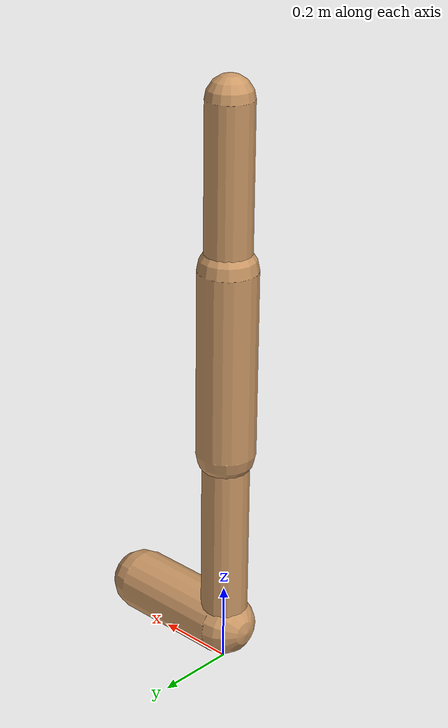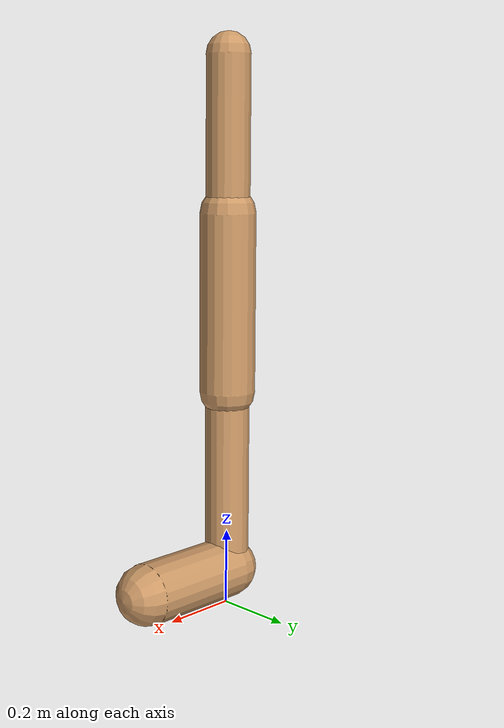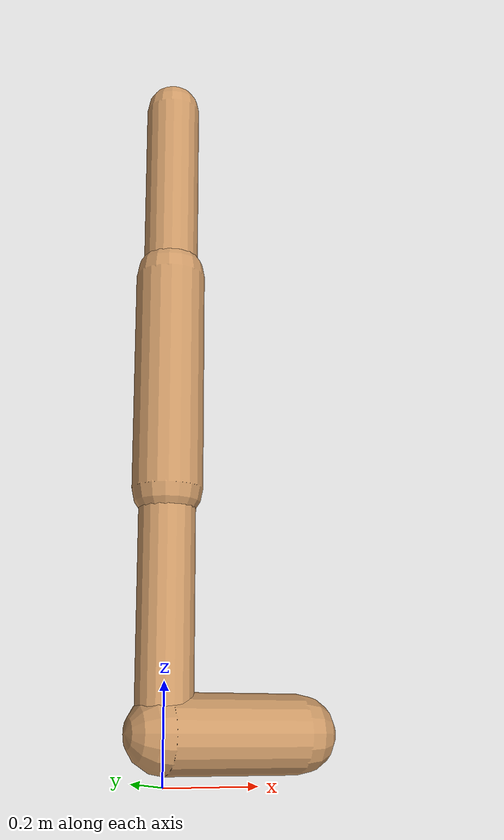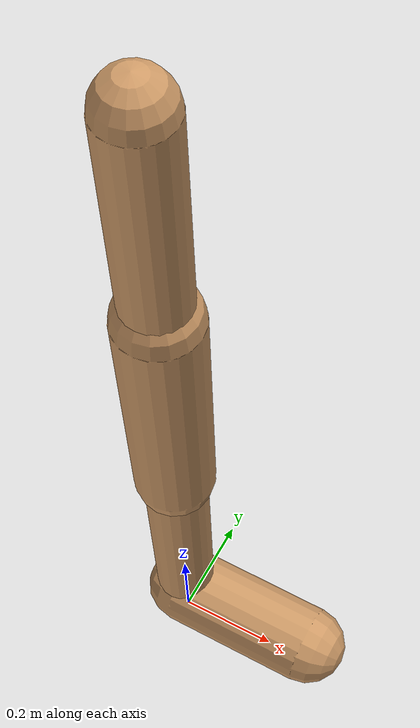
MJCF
<mujoco model="walker2d">
  <compiler angle="degree" coordinate="global" inertiafromgeom="true" />
  <default>
    <joint armature="0.01" damping=".1" limited="true" />
    <geom conaffinity="0" condim="3" contype="1" density="1000" friction="0.8 .1 .1" rgba="0.8 0.6 .4 1" />
  </default>
  <option integrator="RK4" timestep="0.002" />
  <worldbody>

    <body name="torso" pos="0 0 0.0336989513187964">
      <joint armature="0" axis="1 0 0" damping="0" limited="false" name="ignorex" pos="0 0 0" stiffness="0" type="slide" />
      <joint armature="0" axis="0 0 1" damping="0" limited="false" name="ignorez" pos="0 0 0" ref="1.25" stiffness="0" type="slide" />
      <joint armature="0" axis="0 1 0" damping="0" limited="false" name="ignorey" pos="0 0 0" stiffness="0" type="hinge" />
      <geom fromto="0 0 1.45 0 0 1.05" name="torso_geom" size="0.05747864824005605" type="capsule" />
      <body name="thigh">
        <joint axis="0 -1 0" name="thigh_joint" pos="0 0 1.05" range="-150 0" type="hinge" />
        <geom fromto="0.0 0.0 1.05 0.0 0.0 0.5840373388489911" name="thigh_geom" size="0.07301258242722736" type="capsule" />
        <body name="leg" pos="0.0 0.0 -0.01596266115100886">
          <joint axis="0 -1 0" name="leg_joint" pos="0 0 0.6" range="-150 0" type="hinge" />
          <geom fromto="0.0 0.0 0.6 0.0 0.0 0.08226370983221243" name="leg_geom" size="0.058410065941781886" type="capsule" />
          <body name="foot" pos="0.0 0.0 -0.017736290167787577">
            <joint axis="0 -1 0" name="foot_joint" pos="0 0 0.1" range="-45 45" type="hinge" />
            <geom fromto="-0.0 0.0 0.09999999999999999 0.28596808902962173 0.0 0.09999999999999999" name="foot_geom" size="0.07938855216597927" type="capsule" />
          </body>
        </body>
      </body>

      <body name="thigh_left">
        <joint axis="0 -1 0" name="thigh_left_joint" pos="0 0 1.05" range="-150 0" type="hinge" />
        <geom fromto="0.0 0.0 1.05 0.0 0.0 0.5840373388489911" name="thigh_left_geom" rgba=".7 .3 .6 1" size="0.07301258242722736" type="capsule" />
        <body name="leg_left" pos="0.0 0.0 -0.01596266115100886">
          <joint axis="0 -1 0" name="leg_left_joint" pos="0 0 0.6" range="-150 0" type="hinge" />
          <geom fromto="0.0 0.0 0.6 0.0 0.0 0.08226370983221243" name="leg_left_geom" rgba=".7 .3 .6 1" size="0.058410065941781886" type="capsule" />
          <body name="foot_left" pos="0.0 0.0 -0.017736290167787577">
            <joint axis="0 -1 0" name="foot_left_joint" pos="0 0 0.1" range="-45 45" type="hinge" />
            <geom fromto="-0.0 0.0 0.09999999999999999 0.28596808902962173 0.0 0.09999999999999999" name="foot_left_geom" rgba=".7 .3 .6 1" size="0.07938855216597927" type="capsule" />
          </body>
        </body>
      </body>
    </body>
  </worldbody>
  <actuator>

    <motor ctrllimited="true" ctrlrange="-1.0 1.0" gear="100" joint="thigh_joint" />
    <motor ctrllimited="true" ctrlrange="-1.0 1.0" gear="100" joint="leg_joint" />
    <motor ctrllimited="true" ctrlrange="-1.0 1.0" gear="100" joint="foot_joint" />
    <motor ctrllimited="true" ctrlrange="-1.0 1.0" gear="100" joint="thigh_left_joint" />
    <motor ctrllimited="true" ctrlrange="-1.0 1.0" gear="100" joint="leg_left_joint" />
    <motor ctrllimited="true" ctrlrange="-1.0 1.0" gear="100" joint="foot_left_joint" />

  </actuator>
</mujoco>
